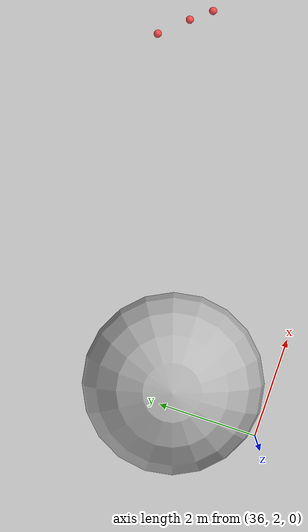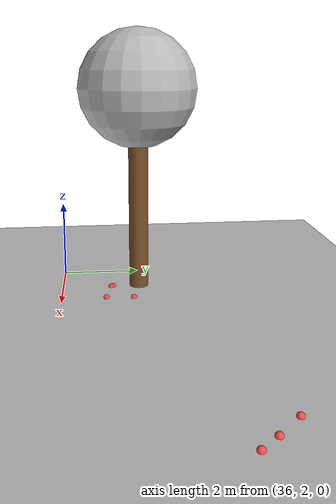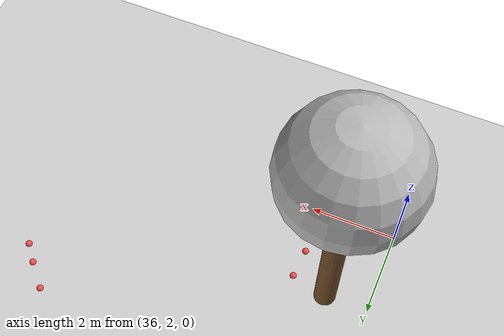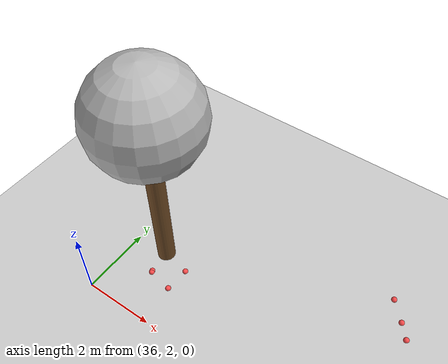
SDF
<sdf version="1.7">
 <world name="default">
  <model name="ground_plane">
   <static>1</static>
   <link name="link">
    <collision name="collision">
     <geometry><plane><normal>0 0 1</normal><size>100 100</size></plane></geometry>
     <surface>
      <contact><collide_bitmask>65535</collide_bitmask></contact>
      <friction><ode><mu>100</mu><mu2>50</mu2></ode></friction>
     </surface>
    </collision>
    <visual name="visual">
     <cast_shadows>0</cast_shadows>
     <geometry><plane><normal>0 0 1</normal><size>100 100</size></plane></geometry>
     <material>
      <script><uri>file://media/materials/scripts/gazebo.material</uri><name>Gazebo/Grey</name></script>
     </material>
    </visual>
   </link>
  </model>
  <model name="tree_simple_88">
   <static>1</static>
   <link name="link">
    <pose>0 0 0.1 0 -0 0</pose>
    <inertial>
     <mass>666</mass>
     <inertia>
      <ixx>0.0861167</ixx>
      <ixy>0</ixy>
      <ixz>0</ixz>
      <iyy>0.0861167</iyy>
      <iyz>0</iyz>
      <izz>0.0861167</izz>
     </inertia>
    </inertial>
    <collision name="collision_trunk">
     <pose>0 0 2 0 -0 0</pose>
     <geometry><cylinder><radius>0.25</radius><length>4</length></cylinder></geometry>
     <surface>
      <contact>
       <poissons_ratio>0.347</poissons_ratio>
       <elastic_modulus>8.8e+09</elastic_modulus>
       <ode><kp>100000</kp><kd>100</kd><max_vel>100</max_vel><min_depth>0.001</min_depth></ode>
      </contact>
      <friction>
       <torsional>
        <coefficient>1</coefficient>
        <use_patch_radius>0</use_patch_radius>
        <surface_radius>0.01</surface_radius>
       </torsional>
      </friction>
     </surface>
    </collision>
    <collision name="collision_treetop">
     <pose>0 0 5.2 0 -0 0</pose>
     <geometry><sphere><radius>1.5</radius></sphere></geometry>
     <surface>
      <contact>
       <poissons_ratio>0.347</poissons_ratio>
       <elastic_modulus>8.8e+09</elastic_modulus>
       <ode><kp>100000</kp><kd>100</kd><max_vel>100</max_vel><min_depth>0.001</min_depth></ode>
      </contact>
      <friction>
       <torsional>
        <coefficient>1</coefficient>
        <use_patch_radius>0</use_patch_radius>
        <surface_radius>0.01</surface_radius>
       </torsional>
      </friction>
     </surface>
    </collision>
    <visual name="trunk">
     <pose>0 0 2 0 -0 0</pose>
     <geometry><cylinder><radius>0.25</radius><length>4</length></cylinder></geometry>
     <material>
      <script>
       <uri>model://tree_simple/scripts</uri>
       <uri>model://tree_simple/materials/textures</uri>
       <name>TreeSimple/Trunk</name>
      </script>
     </material>
    </visual>
    <visual name="treetop">
     <pose>0 0 5.2 0 -0 0</pose>
     <geometry><sphere><radius>1.5</radius></sphere></geometry>
     <material>
      <script>
       <uri>model://tree_simple/scripts</uri>
       <uri>model://tree_simple/materials/textures</uri>
       <name>TreeSimple/Treetop</name>
      </script>
     </material>
    </visual>
   </link>
   <pose>37 4 -0.1 0 -0 0</pose>
  </model>
  <model name="seed_red_318">
   <link name="link">
    <inertial>
     <mass>1</mass>
     <inertia><ixx>0.1</ixx><ixy>0</ixy><ixz>0</ixz><iyy>0.1</iyy><iyz>0</iyz><izz>0.1</izz></inertia>
    </inertial>
    <visual name="visual">
     <geometry><sphere><radius>0.08</radius></sphere></geometry>
     <material>
      <script><name>Gazebo/Grey</name><uri>file://media/materials/scripts/gazebo.material</uri></script>
      <shader type="pixel"><normal_map>__default__</normal_map></shader>
      <ambient>1 0.3 0.3 1</ambient>
      <diffuse>0.7 0.7 0.7 1</diffuse>
      <specular>0.01 0.01 0.01 1</specular>
      <emissive>0 0 0 1</emissive>
     </material>
    </visual>
    <collision name="collision">
     <geometry><sphere><radius>0.0005</radius></sphere></geometry>
     <surface>
      <friction>
       <ode><mu>1</mu><mu2>1</mu2><fdir1>0 0 0</fdir1><slip1>0</slip1><slip2>0</slip2></ode>
       <torsional>
        <coefficient>1</coefficient>
        <patch_radius>0</patch_radius>
        <surface_radius>0</surface_radius>
        <use_patch_radius>1</use_patch_radius>
        <ode><slip>0</slip></ode>
       </torsional>
      </friction>
      <bounce><restitution_coefficient>0</restitution_coefficient><threshold>1e+06</threshold></bounce>
      <contact>
       <collide_without_contact>0</collide_without_contact>
       <collide_without_contact_bitmask>1</collide_without_contact_bitmask>
       <collide_bitmask>1</collide_bitmask>
       <ode>
        <soft_cfm>0</soft_cfm>
        <soft_erp>0.2</soft_erp>
        <kp>1e+13</kp>
        <kd>1</kd>
        <max_vel>0.01</max_vel>
        <min_depth>0</min_depth>
       </ode>
       <bullet>
        <split_impulse>1</split_impulse>
        <split_impulse_penetration_threshold>-0.01</split_impulse_penetration_threshold>
        <soft_cfm>0</soft_cfm>
        <soft_erp>0.2</soft_erp>
        <kp>1e+13</kp>
        <kd>1</kd>
       </bullet>
      </contact>
     </surface>
    </collision>
   </link>
   <static>0</static>
   <pose>43.7604 5.4579 0.0005 0 -0 0</pose>
  </model>
  <model name="seed_red_319">
   <link name="link">
    <inertial>
     <mass>1</mass>
     <inertia><ixx>0.1</ixx><ixy>0</ixy><ixz>0</ixz><iyy>0.1</iyy><iyz>0</iyz><izz>0.1</izz></inertia>
    </inertial>
    <visual name="visual">
     <geometry><sphere><radius>0.08</radius></sphere></geometry>
     <material>
      <script><name>Gazebo/Grey</name><uri>file://media/materials/scripts/gazebo.material</uri></script>
      <shader type="pixel"><normal_map>__default__</normal_map></shader>
      <ambient>1 0.3 0.3 1</ambient>
      <diffuse>0.7 0.7 0.7 1</diffuse>
      <specular>0.01 0.01 0.01 1</specular>
      <emissive>0 0 0 1</emissive>
     </material>
    </visual>
    <collision name="collision">
     <geometry><sphere><radius>0.0005</radius></sphere></geometry>
     <surface>
      <friction>
       <ode><mu>1</mu><mu2>1</mu2><fdir1>0 0 0</fdir1><slip1>0</slip1><slip2>0</slip2></ode>
       <torsional>
        <coefficient>1</coefficient>
        <patch_radius>0</patch_radius>
        <surface_radius>0</surface_radius>
        <use_patch_radius>1</use_patch_radius>
        <ode><slip>0</slip></ode>
       </torsional>
      </friction>
      <bounce><restitution_coefficient>0</restitution_coefficient><threshold>1e+06</threshold></bounce>
      <contact>
       <collide_without_contact>0</collide_without_contact>
       <collide_without_contact_bitmask>1</collide_without_contact_bitmask>
       <collide_bitmask>1</collide_bitmask>
       <ode>
        <soft_cfm>0</soft_cfm>
        <soft_erp>0.2</soft_erp>
        <kp>1e+13</kp>
        <kd>1</kd>
        <max_vel>0.01</max_vel>
        <min_depth>0</min_depth>
       </ode>
       <bullet>
        <split_impulse>1</split_impulse>
        <split_impulse_penetration_threshold>-0.01</split_impulse_penetration_threshold>
        <soft_cfm>0</soft_cfm>
        <soft_erp>0.2</soft_erp>
        <kp>1e+13</kp>
        <kd>1</kd>
       </bullet>
      </contact>
     </surface>
    </collision>
   </link>
   <static>0</static>
   <pose>42.9842 6.36024 0.0005 0 -0 0</pose>
  </model>
  <model name="seed_red_320">
   <link name="link">
    <inertial>
     <mass>1</mass>
     <inertia><ixx>0.1</ixx><ixy>0</ixy><ixz>0</ixz><iyy>0.1</iyy><iyz>0</iyz><izz>0.1</izz></inertia>
    </inertial>
    <visual name="visual">
     <geometry><sphere><radius>0.08</radius></sphere></geometry>
     <material>
      <script><name>Gazebo/Grey</name><uri>file://media/materials/scripts/gazebo.material</uri></script>
      <shader type="pixel"><normal_map>__default__</normal_map></shader>
      <ambient>1 0.3 0.3 1</ambient>
      <diffuse>0.7 0.7 0.7 1</diffuse>
      <specular>0.01 0.01 0.01 1</specular>
      <emissive>0 0 0 1</emissive>
     </material>
    </visual>
    <collision name="collision">
     <geometry><sphere><radius>0.0005</radius></sphere></geometry>
     <surface>
      <friction>
       <ode><mu>1</mu><mu2>1</mu2><fdir1>0 0 0</fdir1><slip1>0</slip1><slip2>0</slip2></ode>
       <torsional>
        <coefficient>1</coefficient>
        <patch_radius>0</patch_radius>
        <surface_radius>0</surface_radius>
        <use_patch_radius>1</use_patch_radius>
        <ode><slip>0</slip></ode>
       </torsional>
      </friction>
      <bounce><restitution_coefficient>0</restitution_coefficient><threshold>1e+06</threshold></bounce>
      <contact>
       <collide_without_contact>0</collide_without_contact>
       <collide_without_contact_bitmask>1</collide_without_contact_bitmask>
       <collide_bitmask>1</collide_bitmask>
       <ode>
        <soft_cfm>0</soft_cfm>
        <soft_erp>0.2</soft_erp>
        <kp>1e+13</kp>
        <kd>1</kd>
        <max_vel>0.01</max_vel>
        <min_depth>0</min_depth>
       </ode>
       <bullet>
        <split_impulse>1</split_impulse>
        <split_impulse_penetration_threshold>-0.01</split_impulse_penetration_threshold>
        <soft_cfm>0</soft_cfm>
        <soft_erp>0.2</soft_erp>
        <kp>1e+13</kp>
        <kd>1</kd>
       </bullet>
      </contact>
     </surface>
    </collision>
   </link>
   <static>0</static>
   <pose>43.4488 5.84234 0.0005 0 -0 0</pose>
  </model>
  <model name="seed_red_353">
   <link name="link">
    <inertial>
     <mass>1</mass>
     <inertia><ixx>0.1</ixx><ixy>0</ixy><ixz>0</ixz><iyy>0.1</iyy><iyz>0</iyz><izz>0.1</izz></inertia>
    </inertial>
    <visual name="visual">
     <geometry><sphere><radius>0.08</radius></sphere></geometry>
     <material>
      <script><name>Gazebo/Grey</name><uri>file://media/materials/scripts/gazebo.material</uri></script>
      <shader type="pixel"><normal_map>__default__</normal_map></shader>
      <ambient>1 0.3 0.3 1</ambient>
      <diffuse>0.7 0.7 0.7 1</diffuse>
      <specular>0.01 0.01 0.01 1</specular>
      <emissive>0 0 0 1</emissive>
     </material>
    </visual>
    <collision name="collision">
     <geometry><sphere><radius>0.0005</radius></sphere></geometry>
     <surface>
      <friction>
       <ode><mu>1</mu><mu2>1</mu2><fdir1>0 0 0</fdir1><slip1>0</slip1><slip2>0</slip2></ode>
       <torsional>
        <coefficient>1</coefficient>
        <patch_radius>0</patch_radius>
        <surface_radius>0</surface_radius>
        <use_patch_radius>1</use_patch_radius>
        <ode><slip>0</slip></ode>
       </torsional>
      </friction>
      <bounce><restitution_coefficient>0</restitution_coefficient><threshold>1e+06</threshold></bounce>
      <contact>
       <collide_without_contact>0</collide_without_contact>
       <collide_without_contact_bitmask>1</collide_without_contact_bitmask>
       <collide_bitmask>1</collide_bitmask>
       <ode>
        <soft_cfm>0</soft_cfm>
        <soft_erp>0.2</soft_erp>
        <kp>1e+13</kp>
        <kd>1</kd>
        <max_vel>0.01</max_vel>
        <min_depth>0</min_depth>
       </ode>
       <bullet>
        <split_impulse>1</split_impulse>
        <split_impulse_penetration_threshold>-0.01</split_impulse_penetration_threshold>
        <soft_cfm>0</soft_cfm>
        <soft_erp>0.2</soft_erp>
        <kp>1e+13</kp>
        <kd>1</kd>
       </bullet>
      </contact>
     </surface>
    </collision>
   </link>
   <static>0</static>
   <pose>37.7822 3.12153 0.0005 0 -0 0</pose>
  </model>
  <model name="seed_red_354">
   <link name="link">
    <inertial>
     <mass>1</mass>
     <inertia><ixx>0.1</ixx><ixy>0</ixy><ixz>0</ixz><iyy>0.1</iyy><iyz>0</iyz><izz>0.1</izz></inertia>
    </inertial>
    <visual name="visual">
     <geometry><sphere><radius>0.08</radius></sphere></geometry>
     <material>
      <script><name>Gazebo/Grey</name><uri>file://media/materials/scripts/gazebo.material</uri></script>
      <shader type="pixel"><normal_map>__default__</normal_map></shader>
      <ambient>1 0.3 0.3 1</ambient>
      <diffuse>0.7 0.7 0.7 1</diffuse>
      <specular>0.01 0.01 0.01 1</specular>
      <emissive>0 0 0 1</emissive>
     </material>
    </visual>
    <collision name="collision">
     <geometry><sphere><radius>0.0005</radius></sphere></geometry>
     <surface>
      <friction>
       <ode><mu>1</mu><mu2>1</mu2><fdir1>0 0 0</fdir1><slip1>0</slip1><slip2>0</slip2></ode>
       <torsional>
        <coefficient>1</coefficient>
        <patch_radius>0</patch_radius>
        <surface_radius>0</surface_radius>
        <use_patch_radius>1</use_patch_radius>
        <ode><slip>0</slip></ode>
       </torsional>
      </friction>
      <bounce><restitution_coefficient>0</restitution_coefficient><threshold>1e+06</threshold></bounce>
      <contact>
       <collide_without_contact>0</collide_without_contact>
       <collide_without_contact_bitmask>1</collide_without_contact_bitmask>
       <collide_bitmask>1</collide_bitmask>
       <ode>
        <soft_cfm>0</soft_cfm>
        <soft_erp>0.2</soft_erp>
        <kp>1e+13</kp>
        <kd>1</kd>
        <max_vel>0.01</max_vel>
        <min_depth>0</min_depth>
       </ode>
       <bullet>
        <split_impulse>1</split_impulse>
        <split_impulse_penetration_threshold>-0.01</split_impulse_penetration_threshold>
        <soft_cfm>0</soft_cfm>
        <soft_erp>0.2</soft_erp>
        <kp>1e+13</kp>
        <kd>1</kd>
       </bullet>
      </contact>
     </surface>
    </collision>
   </link>
   <static>0</static>
   <pose>37.0745 3.26436 0.0005 0 -0 0</pose>
  </model>
  <model name="seed_red_355">
   <link name="link">
    <inertial>
     <mass>1</mass>
     <inertia><ixx>0.1</ixx><ixy>0</ixy><ixz>0</ixz><iyy>0.1</iyy><iyz>0</iyz><izz>0.1</izz></inertia>
    </inertial>
    <visual name="visual">
     <geometry><sphere><radius>0.08</radius></sphere></geometry>
     <material>
      <script><name>Gazebo/Grey</name><uri>file://media/materials/scripts/gazebo.material</uri></script>
      <shader type="pixel"><normal_map>__default__</normal_map></shader>
      <ambient>1 0.3 0.3 1</ambient>
      <diffuse>0.7 0.7 0.7 1</diffuse>
      <specular>0.01 0.01 0.01 1</specular>
      <emissive>0 0 0 1</emissive>
     </material>
    </visual>
    <collision name="collision">
     <geometry><sphere><radius>0.0005</radius></sphere></geometry>
     <surface>
      <friction>
       <ode><mu>1</mu><mu2>1</mu2><fdir1>0 0 0</fdir1><slip1>0</slip1><slip2>0</slip2></ode>
       <torsional>
        <coefficient>1</coefficient>
        <patch_radius>0</patch_radius>
        <surface_radius>0</surface_radius>
        <use_patch_radius>1</use_patch_radius>
        <ode><slip>0</slip></ode>
       </torsional>
      </friction>
      <bounce><restitution_coefficient>0</restitution_coefficient><threshold>1e+06</threshold></bounce>
      <contact>
       <collide_without_contact>0</collide_without_contact>
       <collide_without_contact_bitmask>1</collide_without_contact_bitmask>
       <collide_bitmask>1</collide_bitmask>
       <ode>
        <soft_cfm>0</soft_cfm>
        <soft_erp>0.2</soft_erp>
        <kp>1e+13</kp>
        <kd>1</kd>
        <max_vel>0.01</max_vel>
        <min_depth>0</min_depth>
       </ode>
       <bullet>
        <split_impulse>1</split_impulse>
        <split_impulse_penetration_threshold>-0.01</split_impulse_penetration_threshold>
        <soft_cfm>0</soft_cfm>
        <soft_erp>0.2</soft_erp>
        <kp>1e+13</kp>
        <kd>1</kd>
       </bullet>
      </contact>
     </surface>
    </collision>
   </link>
   <static>0</static>
   <pose>37.8247 3.81769 0.0005 0 -0 0</pose>
  </model>
  <model name="seed_red_357">
   <link name="link">
    <inertial>
     <mass>1</mass>
     <inertia><ixx>0.1</ixx><ixy>0</ixy><ixz>0</ixz><iyy>0.1</iyy><iyz>0</iyz><izz>0.1</izz></inertia>
    </inertial>
    <visual name="visual">
     <geometry><sphere><radius>0.08</radius></sphere></geometry>
     <material>
      <script><name>Gazebo/Grey</name><uri>file://media/materials/scripts/gazebo.material</uri></script>
      <shader type="pixel"><normal_map>__default__</normal_map></shader>
      <ambient>1 0.3 0.3 1</ambient>
      <diffuse>0.7 0.7 0.7 1</diffuse>
      <specular>0.01 0.01 0.01 1</specular>
      <emissive>0 0 0 1</emissive>
     </material>
    </visual>
    <collision name="collision">
     <geometry><sphere><radius>0.0005</radius></sphere></geometry>
     <surface>
      <friction>
       <ode><mu>1</mu><mu2>1</mu2><fdir1>0 0 0</fdir1><slip1>0</slip1><slip2>0</slip2></ode>
       <torsional>
        <coefficient>1</coefficient>
        <patch_radius>0</patch_radius>
        <surface_radius>0</surface_radius>
        <use_patch_radius>1</use_patch_radius>
        <ode><slip>0</slip></ode>
       </torsional>
      </friction>
      <bounce><restitution_coefficient>0</restitution_coefficient><threshold>1e+06</threshold></bounce>
      <contact>
       <collide_without_contact>0</collide_without_contact>
       <collide_without_contact_bitmask>1</collide_without_contact_bitmask>
       <collide_bitmask>1</collide_bitmask>
       <ode>
        <soft_cfm>0</soft_cfm>
        <soft_erp>0.2</soft_erp>
        <kp>1e+13</kp>
        <kd>1</kd>
        <max_vel>0.01</max_vel>
        <min_depth>0</min_depth>
       </ode>
       <bullet>
        <split_impulse>1</split_impulse>
        <split_impulse_penetration_threshold>-0.01</split_impulse_penetration_threshold>
        <soft_cfm>0</soft_cfm>
        <soft_erp>0.2</soft_erp>
        <kp>1e+13</kp>
        <kd>1</kd>
       </bullet>
      </contact>
     </surface>
    </collision>
   </link>
   <static>0</static>
   <pose>37.0563 3.3055 0.0005 0 -0 0</pose>
  </model>
 </world>
</sdf>
